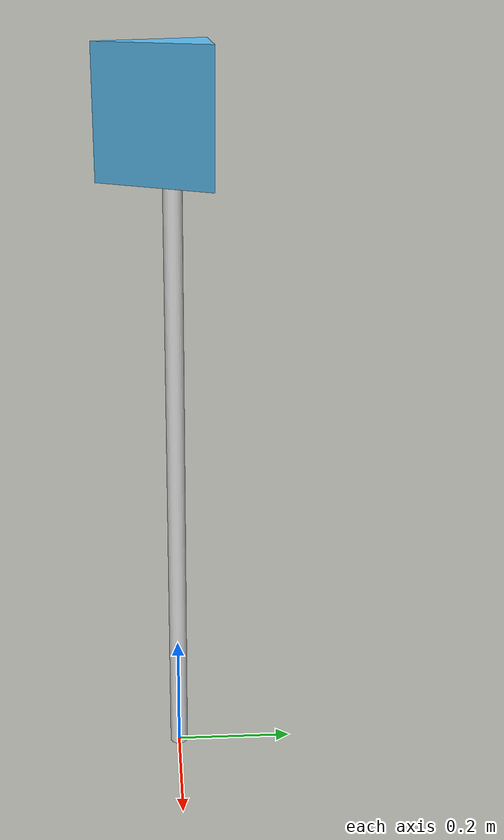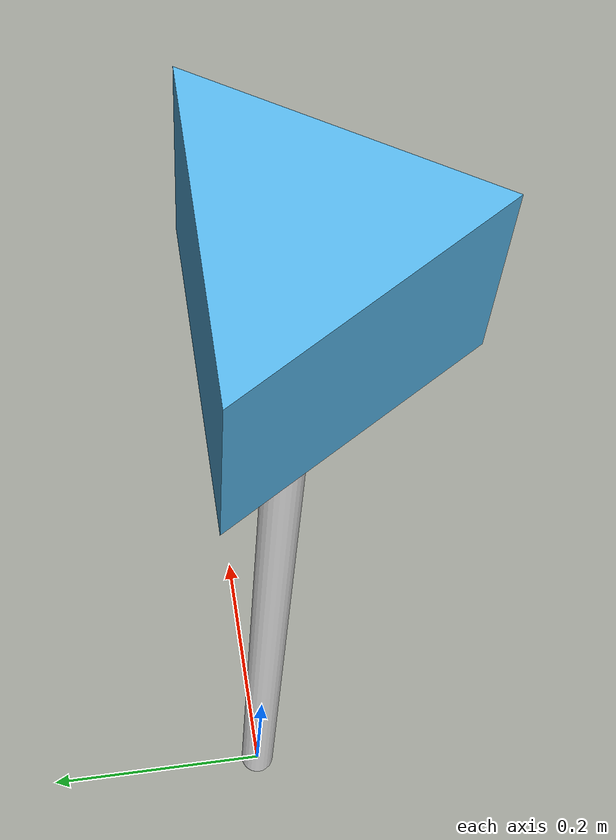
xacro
<?xml version='1.0'?>

<robot name="aruco_marker" xmlns:xacro="http://www.ros.org/wiki/xacro">
	<xacro:property name="robot_name" value="aruco_marker" />
	<xacro:property name="pole_mass" value="0"/>
	<xacro:property name="pole_height" value="1"/>
	<xacro:property name="pole_radius" value=".015"/>
	<xacro:property name="marker_mass" value=".240"/>
	<xacro:arg name="model_file" default="arucoMarker0.dae"/>

	<!-- Make Chassis of Bot -->
	<link name="basePole">
		<pose>0 0 0.1 0 0 0</pose>

		<inertial>
			<mass value="${pole_mass}"/>
      		<origin xyz="0 0 0" rpy=" 0 0 0"/>

      		<inertia
      			ixx="0" ixy="0" ixz="0"
      			iyy="0" iyz="0"
      			izz="0"
      		/>
		</inertial>

		<collision name="collision">
			<origin xyz="0 0 0" rpy=" 0 0 0"/>
			<geometry>
				<box size="${2 * pole_radius} ${2 * pole_radius} ${pole_height}"/>
			</geometry>
		</collision>

		<visual name="pole_visual">
			<origin xyz="0 0 0" rpy=" 0 0 0"/>
			<geometry>
				<cylinder radius="${pole_radius}" length="${pole_height}"/>
			</geometry>

		</visual>

	</link>

	<!-- Aruco Marker -->
	<link name="arucoMarker">
		<inertial>
			<mass value="${marker_mass}"/>
			<origin xyz="0 0 0" rpy="0 0 0"/>

			<inertia
		        ixx="1e-6" ixy="0.0" ixz="0.0"
		        iyy="1e-6" iyz="0.0"
		        izz="1e-6"
		      />
		</inertial>

		<visual>
			<origin xyz="0 0 0" rpy="0 0 0"/>
			<geometry>
				<mesh filename="file://$(find simulation2024)/models/aruco_markers/$(arg model_file)"/>
			</geometry>
		</visual>

		<collision>
			<origin xyz="0 0 0" rpy="0 0 0"/>
			<geometry>
				<box size="0.2 0.2 0.2"/>
			</geometry>
		</collision>
	</link>

	<!-- Project center to the ground -->
	<link name="world"></link>

	<joint name="world_joint" type="fixed">
		<origin xyz="0 0 ${0.5 * pole_height}" rpy="0 0 0" />
		<parent link="world"/>
		<child link="basePole" />
	</joint>

	<joint name="marker_pole_joint" type="fixed">
		<origin xyz="0 0 ${0.5 * pole_height + 0.1}" rpy="0 0 0" />

		<parent link="basePole"/>
		<child link="arucoMarker" />
	</joint>

	<!-- Color of stuff -->
	<gazebo reference="basePole">
		<material>Gazebo/White</material>
		<kp>1000000.0</kp> <!-- kp and kd for rubber -->
		<kd>100.0</kd>
		<mu1>1.0</mu1>
		<mu2>1.0</mu2>
		<maxVel>1.0</maxVel>
		<minDepth>0.00</minDepth>
	</gazebo>

</robot>
